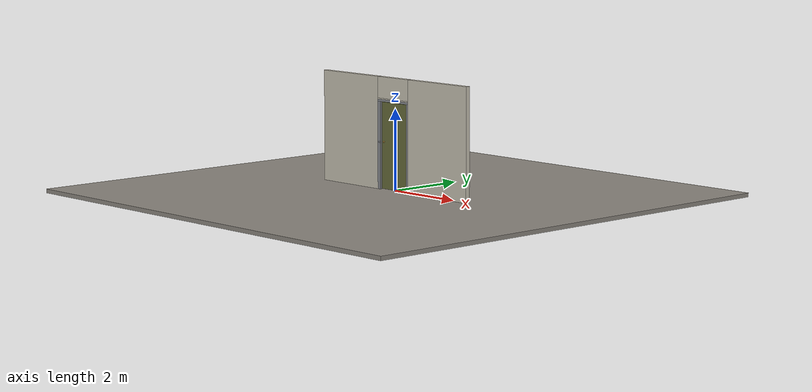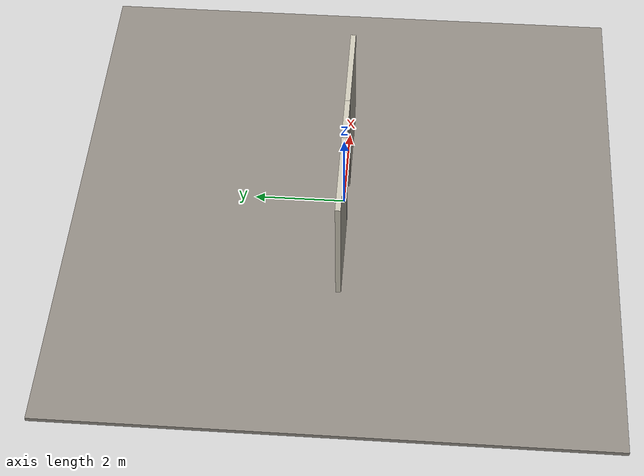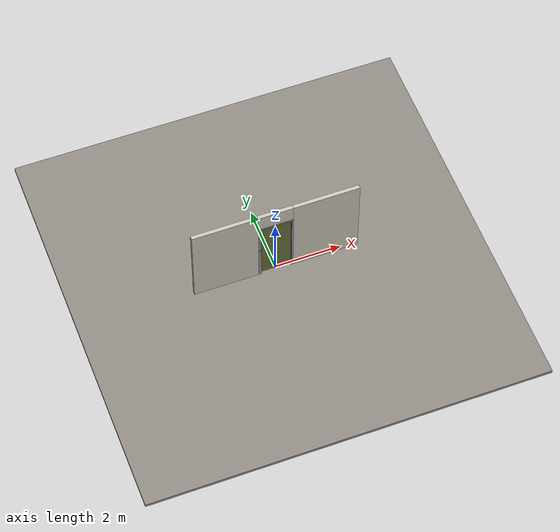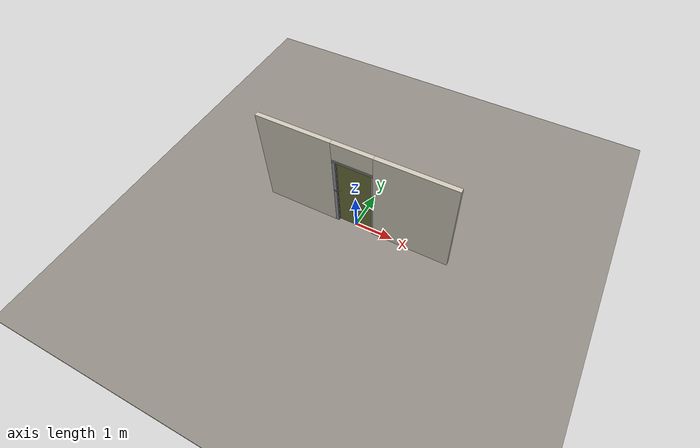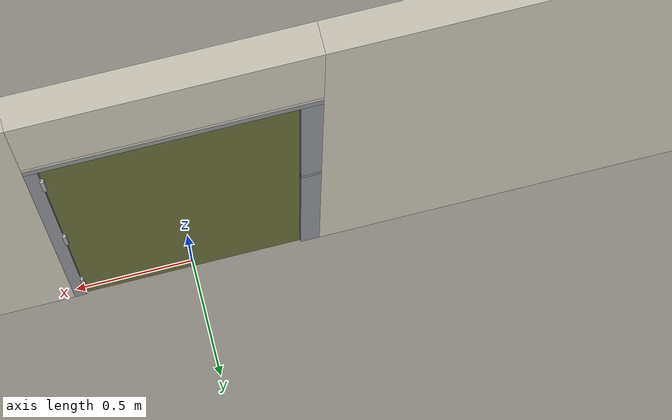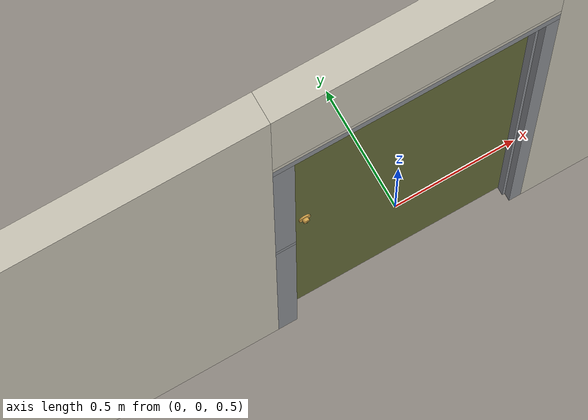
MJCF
<?xml version="1.0" ?>
<mujoco model="db0596_swing_single_full">
  <compiler angle="radian" meshdir="../../hardware" texturedir="../../textures" autolimits="true" inertiafromgeom="false"/>
  <option timestep="0.002" integrator="implicitfast" cone="elliptic" impratio="10" noslip_iterations="3">
    <flag multiccd="enable"/>
  </option>
  <size memory="16M"/>
  <default>
    <geom condim="4" solref="0.005 1" solimp="0.95 0.99 0.001"/>
    <joint solreflimit="0.005 1" solimplimit="0.95 0.99 0.001"/>
    <tendon solreflimit="0.005 1"/>
    <equality solref="0.002 1"/>
  </default>
  <visual>
    <headlight ambient="0.4 0.4 0.4" diffuse="0.7 0.7 0.7" specular="0.2 0.2 0.2"/>
    <quality shadowsize="4096"/>
    <map znear="0.01" zfar="60"/>
  </visual>
  <asset>
    <mesh name="cyl_face_e9e5036966" file="cyl_face_e9e5036966.obj"/>
    <mesh name="hinge_ed08f20e7f" file="hinge_ed08f20e7f.obj"/>
    <mesh name="hinge_jamb_1278ce3e25" file="hinge_jamb_1278ce3e25.obj"/>
    <material name="mat_floor" rgba="0.55 0.53 0.5 1" specular="0.2" shininess="0.15" reflectance="0"/>
    <material name="mat_wall" rgba="0.78 0.76 0.7 1" specular="0.2" shininess="0.1" reflectance="0"/>
    <material name="mat_leaf" rgba="0.4 0.42 0.22 1" specular="0.23" shininess="0.58" reflectance="0.02"/>
    <material name="mat_hinge" rgba="0.65 0.66 0.68 1" specular="0.74" shininess="0.5" reflectance="0.36"/>
    <material name="mat_deadbolt" rgba="0.85 0.66 0.3 1" specular="0.8" shininess="0.75" reflectance="0.4"/>
    <material name="mat_frame" rgba="0.55 0.56 0.58 1" specular="0.8" shininess="0.55" reflectance="0.4"/>
    <texture name="skybox" type="skybox" builtin="gradient" rgb1="0.6 0.7 0.85" rgb2="0.9 0.92 0.95" width="256" height="256"/>
  </asset>
  <worldbody>
    <light name="sun" pos="1.5 -2.5 4" dir="-0.3 0.5 -0.8" directional="true" diffuse="0.8 0.8 0.8" specular="0.3 0.3 0.3" castshadow="true"/>
    <light name="fill" pos="-1.5 2.5 3" dir="0.3 -0.5 -0.7" directional="true" diffuse="0.35 0.35 0.4" castshadow="false"/>
    <camera name="robot_view" pos="0 -2.666313 1.812087" xyaxes="1 0 0 0 0.26963 0.962964" fovy="52"/>
    <camera name="far_view" pos="0 2.609312 1.812087" xyaxes="-1 0 0 0 -0.26963 0.962964" fovy="52"/>
    <camera name="iso" pos="-2.004737 -2.244263 2.234138" xyaxes="0.741536 -0.670913 0 0.242917 0.268487 0.932151" fovy="46"/>
    <camera name="detail_handle" pos="-0.1735 -0.8285 1.296" xyaxes="0.97561 0.219512 0 -0.070934 0.315262 0.94635" fovy="38"/>
    <geom name="floor" type="box" size="6 6 0.05" pos="0 0 -0.05" material="mat_floor" group="0" contype="1" conaffinity="1" friction="0.8 0.005 0.0001" density="2400"/>
    <geom name="wall_left" type="box" size="0.97975 0.0575 1.3735" pos="-1.52025 -0.0285 1.3735" material="mat_wall" group="0" contype="1" conaffinity="1" friction="0.6 0.005 0.0001" density="800"/>
    <geom name="wall_right" type="box" size="0.99475 0.0575 1.3735" pos="1.50525 -0.0285 1.3735" material="mat_wall" group="0" contype="1" conaffinity="1" friction="0.6 0.005 0.0001" density="800"/>
    <geom name="wall_header" type="box" size="0.5255 0.0575 0.26" pos="-0.015 -0.0285 2.487" material="mat_wall" group="0" contype="1" conaffinity="1" friction="0.6 0.005 0.0001" density="800"/>
    <geom name="hinge_0_jamb" type="mesh" mesh="hinge_jamb_1278ce3e25" pos="0.4575 0.029 0.259" quat="0 0 0 1" material="mat_hinge" group="1" contype="0" conaffinity="0" density="7850"/>
    <geom name="hinge_1_jamb" type="mesh" mesh="hinge_jamb_1278ce3e25" pos="0.4575 0.029 1.076" quat="0 0 0 1" material="mat_hinge" group="1" contype="0" conaffinity="0" density="7850"/>
    <geom name="hinge_2_jamb" type="mesh" mesh="hinge_jamb_1278ce3e25" pos="0.4575 0.029 1.963" quat="0 0 0 1" material="mat_hinge" group="1" contype="0" conaffinity="0" density="7850"/>
    <geom name="leaf_deadbolt_strike_b" type="box" size="0.0155 0.003 0.0005" pos="-0.46 0 1.1375" quat="0.5 0.5 0.5 0.5" material="mat_deadbolt" group="1" contype="0" conaffinity="0" density="7800"/>
    <geom name="leaf_deadbolt_strike_l" type="box" size="0.003 0.0155 0.0005" pos="-0.46 -0.0125 1.156" quat="0.5 0.5 0.5 0.5" material="mat_deadbolt" group="1" contype="0" conaffinity="0" density="7800"/>
    <geom name="leaf_deadbolt_strike_t" type="box" size="0.0155 0.003 0.0005" pos="-0.46 0 1.1745" quat="0.5 0.5 0.5 0.5" material="mat_deadbolt" group="1" contype="0" conaffinity="0" density="7800"/>
    <geom name="leaf_deadbolt_strike_r" type="box" size="0.003 0.0155 0.0005" pos="-0.46 0.0125 1.156" quat="0.5 0.5 0.5 0.5" material="mat_deadbolt" group="1" contype="0" conaffinity="0" density="7800"/>
    <geom name="jamb_hinge" type="box" size="0.025 0.0575 1.0735" pos="0.4855 -0.0285 1.0735" material="mat_frame" group="0" contype="1" conaffinity="1" friction="0.6 0.005 0.0001" density="300"/>
    <geom name="strike_1156_wall_n" type="box" size="0.04 0.03825 0.0155" pos="-0.5005 -0.04775 1.156" material="mat_frame" group="0" contype="1" conaffinity="1" friction="0.6 0.005 0.0001" density="300"/>
    <geom name="strike_1156_wall_p" type="box" size="0.04 0.00975 0.0155" pos="-0.5005 0.01925 1.156" material="mat_frame" group="0" contype="1" conaffinity="1" friction="0.6 0.005 0.0001" density="300"/>
    <geom name="strike_1156_back" type="box" size="0.0253 0.0095 0.0155" pos="-0.5152 0 1.156" material="mat_frame" group="0" contype="1" conaffinity="1" friction="0.6 0.005 0.0001" density="300"/>
    <geom name="jamb_strike_0" type="box" size="0.04 0.0575 0.57025" pos="-0.5005 -0.0285 0.57025" material="mat_frame" group="0" contype="1" conaffinity="1" friction="0.6 0.005 0.0001" density="300"/>
    <geom name="jamb_strike_1" type="box" size="0.04 0.0575 0.48775" pos="-0.5005 -0.0285 1.65925" material="mat_frame" group="0" contype="1" conaffinity="1" friction="0.6 0.005 0.0001" density="300"/>
    <geom name="jamb_head" type="box" size="0.5255 0.0575 0.025" pos="-0.015 -0.0285 2.172" material="mat_frame" group="0" contype="1" conaffinity="1" friction="0.6 0.005 0.0001" density="300"/>
    <geom name="head_stud" type="box" size="0.5255 0.0575 0.015" pos="-0.015 -0.0285 2.212" material="mat_wall" group="0" contype="1" conaffinity="1" friction="0.6 0.005 0.0001" density="500"/>
    <geom name="stop_hinge" type="box" size="0.0055 0.016 1.0735" pos="0.455 -0.0385 1.0735" material="mat_frame" group="0" contype="1" conaffinity="1" friction="0.6 0.005 0.0001" density="300"/>
    <geom name="stop_strike" type="box" size="0.0055 0.016 1.0735" pos="-0.455 -0.0385 1.0735" material="mat_frame" group="0" contype="1" conaffinity="1" friction="0.6 0.005 0.0001" density="300"/>
    <geom name="stop_head" type="box" size="0.4605 0.016 0.0055" pos="0 -0.0385 2.1415" material="mat_frame" group="0" contype="1" conaffinity="1" friction="0.6 0.005 0.0001" density="300"/>
    <site name="approach_point" pos="0 -1.5 0" quat="1 0 0 0" size="0.05" rgba="0.2 0.9 0.2 0.5" group="4"/>
    <site name="goal_point" pos="0 1.5 0" quat="1 0 0 0" size="0.05" rgba="0.2 0.9 0.2 0.5" group="4"/>
    <site name="door_plane_center" pos="0 0 1.0735" quat="1 0 0 0" size="0.02" rgba="0.2 0.9 0.2 0.5" group="4"/>
    <body name="leaf" pos="0.4605 0 0">
      <inertial pos="-0.455406 0.000186 1.076376" mass="84.81187" quat="0.499659 0.50046 -0.499537 0.500344" diaginertia="6.061180135 32.257032017 38.289889043"/>
      <joint name="leaf_hinge" type="hinge" axis="0 0 -1" pos="-0.003 0.029 0" limited="true" range="0 1.570796" damping="0.318966" frictionloss="0.519503" armature="0.02"/>
      <geom name="leaf_slab" type="box" size="0.457 0.022 1.067" pos="-0.46 0 1.076" material="mat_leaf" group="0" contype="1" conaffinity="1" friction="0.45 0.005 0.0001" density="1"/>
      <geom name="hinge_0" type="mesh" mesh="hinge_ed08f20e7f" pos="-0.003 0.029 0.259" quat="0 0 0 1" material="mat_hinge" group="1" contype="0" conaffinity="0" density="7850"/>
      <geom name="hinge_1" type="mesh" mesh="hinge_ed08f20e7f" pos="-0.003 0.029 1.076" quat="0 0 0 1" material="mat_hinge" group="1" contype="0" conaffinity="0" density="7850"/>
      <geom name="hinge_2" type="mesh" mesh="hinge_ed08f20e7f" pos="-0.003 0.029 1.963" quat="0 0 0 1" material="mat_hinge" group="1" contype="0" conaffinity="0" density="7850"/>
      <geom name="leaf_deadbolt_faceplate" type="box" size="0.0006 0.014 0.0245" pos="-0.9164 0 1.156" material="mat_deadbolt" group="1" contype="0" conaffinity="0" density="8500"/>
      <geom name="leaf_deadbolt_cylinder_face" type="mesh" mesh="cyl_face_e9e5036966" pos="-0.852 -0.022 1.156" quat="0 0 -0.707107 0.707107" material="mat_deadbolt" group="1" contype="0" conaffinity="0" density="7100"/>
      <site name="leaf_edge_mid" pos="-0.917 0 1.067" quat="1 0 0 0" size="0.02" rgba="0.2 0.9 0.2 0.5" group="4"/>
      <body name="leaf_deadbolt" pos="-0.917 0 1.156">
        <inertial pos="0.0023 0 0" mass="0.18836" quat="0 0 0.707107 0.707107" diaginertia="0.000013829 0.000052194 0.000057986"/>
        <geom name="leaf_deadbolt_box" type="box" size="0.0277 0.008 0.0125" pos="0.0023 0 0" material="mat_deadbolt" group="0" contype="1" conaffinity="1" friction="0.3 0.005 0.0001" density="8500"/>
      </body>
    </body>
  </worldbody>
  <sensor>
    <jointpos name="leaf_hinge_pos" joint="leaf_hinge"/>
    <jointvel name="leaf_hinge_vel" joint="leaf_hinge"/>
  </sensor>
</mujoco>
